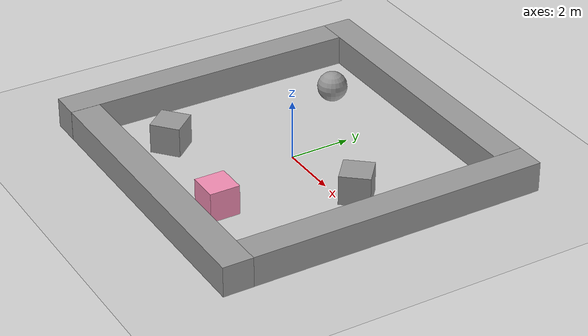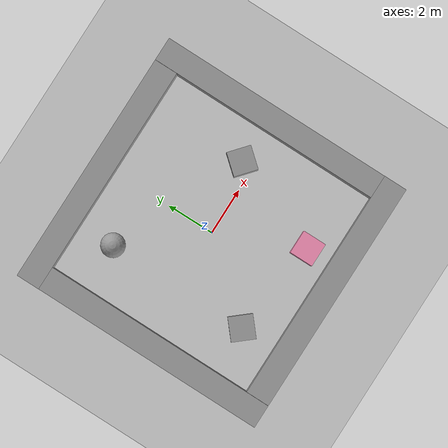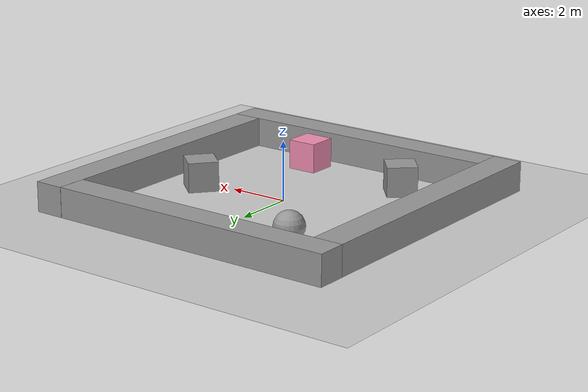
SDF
<sdf version="1.7">
 <world name="default">
  <light name="sun" type="directional">
   <pose>0 0 10 0 -0 0</pose>
   <diffuse>0.8 0.8 0.8 1</diffuse>
   <specular>0.2 0.2 0.2 1</specular>
   <attenuation>
    <range>1000</range>
    <constant>0.9</constant>
    <linear>0.01</linear>
    <quadratic>0.001</quadratic>
   </attenuation>
   <direction>-0.5 0.1 -0.9</direction>
   <spot><inner_angle>0</inner_angle><outer_angle>0</outer_angle><falloff>0</falloff></spot>
  </light>
  <model name="ground_plane">
   <static>1</static>
   <link name="link">
    <collision name="collision">
     <geometry><plane><size>100 100</size></plane></geometry>
     <surface><friction><ode><mu>100</mu><mu2>50</mu2></ode></friction></surface>
    </collision>
    <visual name="visual">
     <cast_shadows>0</cast_shadows>
     <geometry><plane><normal>0 0 1</normal><size>100 100</size></plane></geometry>
     <material>
      <script><uri>file://media/materials/scripts/gazebo.material</uri><name>Gazebo/Grey</name></script>
     </material>
    </visual>
   </link>
  </model>
  <model name="colored_box">
   <pose>1.5 -3.5 0.5 0 0 0</pose>
   <link name="link">
    <inertial>
     <mass>1</mass>
     <inertia>
      <ixx>0.166667</ixx>
      <ixy>0</ixy>
      <ixz>0</ixz>
      <iyy>0.166667</iyy>
      <iyz>0</iyz>
      <izz>0.166667</izz>
     </inertia>
    </inertial>
    <collision name="collision"><geometry><box><size>1 1 1</size></box></geometry></collision>
    <visual name="visual">
     <geometry><box><size>1 1 1</size></box></geometry>
     <material>
      <script><name>Gazebo/Pink</name><uri>file://media/materials/scripts/gazebo.material</uri></script>
     </material>
    </visual>
   </link>
  </model>
  <model name="unit_box_1">
   <pose>-2.5 -3 0.5 0 0 0.707</pose>
   <link name="link">
    <inertial>
     <mass>1</mass>
     <inertia>
      <ixx>0.166667</ixx>
      <ixy>0</ixy>
      <ixz>0</ixz>
      <iyy>0.166667</iyy>
      <iyz>0</iyz>
      <izz>0.166667</izz>
     </inertia>
    </inertial>
    <collision name="collision"><geometry><box><size>1 1 1</size></box></geometry></collision>
    <visual name="visual">
     <geometry><box><size>1 1 1</size></box></geometry>
     <material>
      <script><name>Gazebo/Grey</name><uri>file://media/materials/scripts/gazebo.material</uri></script>
     </material>
    </visual>
   </link>
  </model>
  <model name="unit_box_2">
   <pose>3 0.5 0.5 0 0 0.866</pose>
   <link name="link">
    <inertial>
     <mass>1</mass>
     <inertia>
      <ixx>0.166667</ixx>
      <ixy>0</ixy>
      <ixz>0</ixz>
      <iyy>0.166667</iyy>
      <iyz>0</iyz>
      <izz>0.166667</izz>
     </inertia>
    </inertial>
    <collision name="collision"><geometry><box><size>1 1 1</size></box></geometry></collision>
    <visual name="visual">
     <geometry><box><size>1 1 1</size></box></geometry>
     <material>
      <script><name>Gazebo/Grey</name><uri>file://media/materials/scripts/gazebo.material</uri></script>
     </material>
    </visual>
   </link>
  </model>
  <model name="unit_sphere">
   <pose>-2.5 3 0.5 0 -0 0</pose>
   <link name="link">
    <inertial>
     <mass>1</mass>
     <inertia><ixx>0.1</ixx><ixy>0</ixy><ixz>0</ixz><iyy>0.1</iyy><iyz>0</iyz><izz>0.1</izz></inertia>
    </inertial>
    <collision name="collision"><geometry><sphere><radius>0.5</radius></sphere></geometry></collision>
    <visual name="visual">
     <geometry><sphere><radius>0.5</radius></sphere></geometry>
     <material>
      <script><name>Gazebo/Grey</name><uri>file://media/materials/scripts/gazebo.material</uri></script>
     </material>
    </visual>
   </link>
  </model>
  <model name="unit_box_3">
   <pose>-5 -0.5 0.5 0 0 1.570</pose>
   <link name="link">
    <static>1</static>
    <collision name="collision"><geometry><box><size>10 1 1</size></box></geometry></collision>
    <visual name="visual">
     <geometry><box><size>10 1 1</size></box></geometry>
     <material>
      <script><name>Gazebo/Grey</name><uri>file://media/materials/scripts/gazebo.material</uri></script>
     </material>
    </visual>
   </link>
  </model>
  <model name="unit_box_4">
   <pose>0.5 -5 0.5 0 0 0</pose>
   <link name="link">
    <static>1</static>
    <collision name="collision"><geometry><box><size>10 1 1</size></box></geometry></collision>
    <visual name="visual">
     <geometry><box><size>10 1 1</size></box></geometry>
     <material>
      <script><name>Gazebo/Grey</name><uri>file://media/materials/scripts/gazebo.material</uri></script>
     </material>
    </visual>
   </link>
  </model>
  <model name="unit_box_5">
   <pose>5 0.5 0.5 0 0 1.570</pose>
   <link name="link">
    <static>1</static>
    <collision name="collision"><geometry><box><size>10 1 1</size></box></geometry></collision>
    <visual name="visual">
     <geometry><box><size>10 1 1</size></box></geometry>
     <material>
      <script><name>Gazebo/Grey</name><uri>file://media/materials/scripts/gazebo.material</uri></script>
     </material>
    </visual>
   </link>
  </model>
  <model name="unit_box_6">
   <pose>-0.5 5 0.5 0 0 0</pose>
   <link name="link">
    <static>1</static>
    <collision name="collision"><geometry><box><size>10 1 1</size></box></geometry></collision>
    <visual name="visual">
     <geometry><box><size>10 1 1</size></box></geometry>
     <material>
      <script><name>Gazebo/Grey</name><uri>file://media/materials/scripts/gazebo.material</uri></script>
     </material>
    </visual>
   </link>
  </model>
  <gravity>0 0 -9.8</gravity>
  <physics type="ode">
   <max_step_size>0.001</max_step_size>
   <real_time_factor>1</real_time_factor>
   <real_time_update_rate>1000</real_time_update_rate>
  </physics>
  <scene><ambient>0.4 0.4 0.4 1</ambient><background>0.7 0.7 0.7 1</background><shadows>1</shadows></scene>
 </world>
</sdf>
